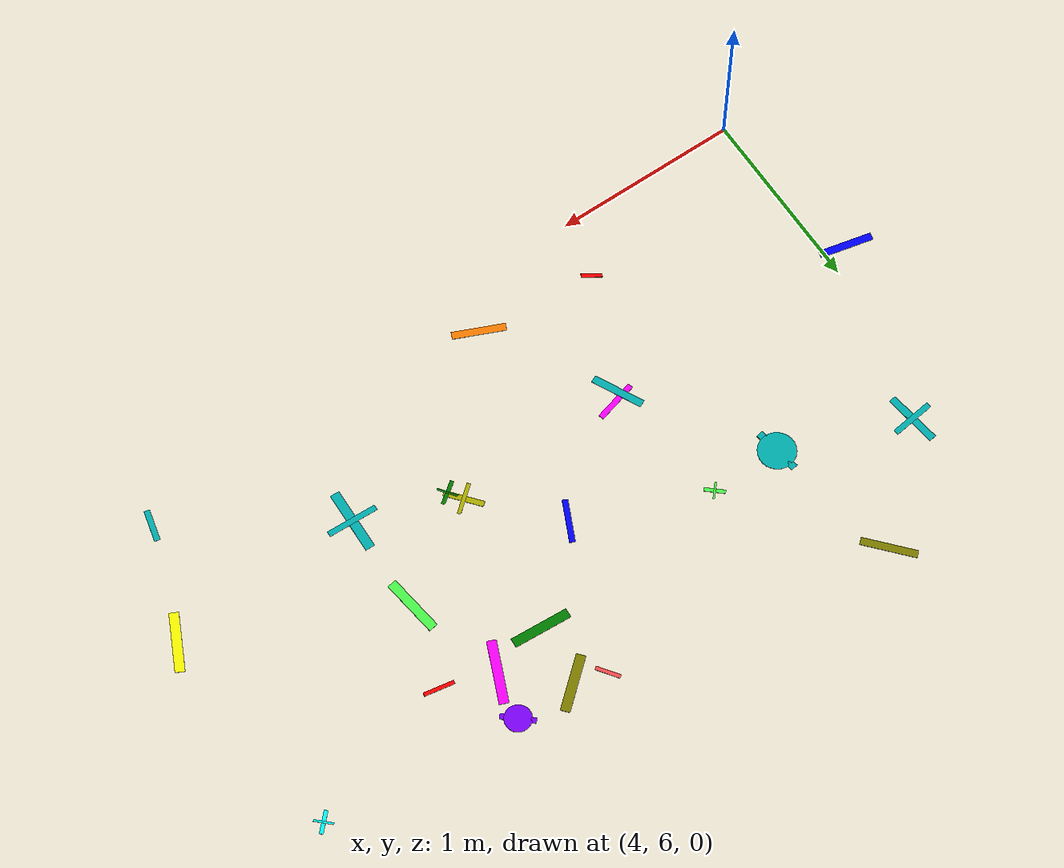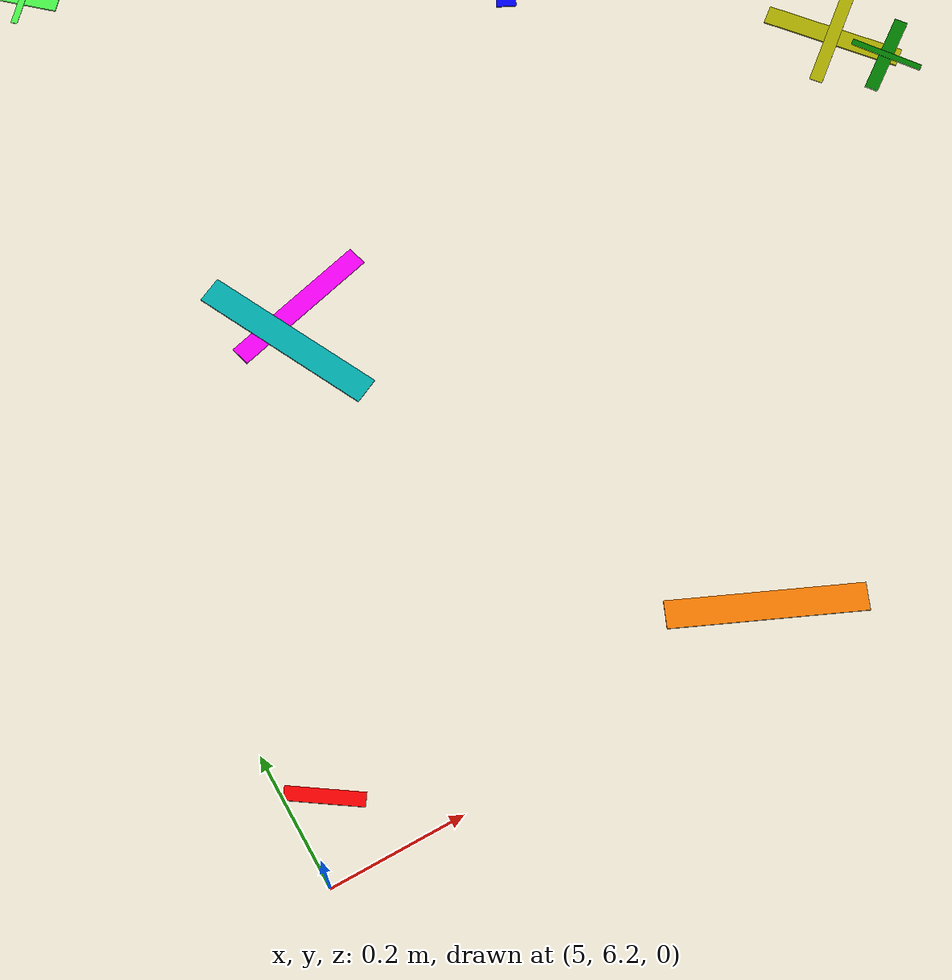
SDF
<sdf version="1.6">
 <world name="default">
  <model name="letter_X_1439">
   <static>true</static>
   <pose>3.88 6.90 0.012 0 0 6.064</pose>
   <link name="link">
    <visual name="visual">
     <geometry><box><size>0.29 0.04 0.002</size></box></geometry>
     <material>
      <ambient>0.0 0.0 1.0 1</ambient>
      <diffuse>0.0 0.0 1.0 1</diffuse>
      <specular>0.1 0.1 0.1 1</specular>
     </material>
    </visual>
   </link>
  </model>
  <model name="letter_E_1442">
   <static>true</static>
   <pose>4.18 7.87 0.012 0 0 1.702</pose>
   <link name="link">
    <visual name="visual">
     <geometry><box><size>0.29 0.04 0.002</size></box></geometry>
     <material>
      <ambient>0.0 0.7 0.7 1</ambient>
      <diffuse>0.0 0.7 0.7 1</diffuse>
      <specular>0.1 0.1 0.1 1</specular>
     </material>
    </visual>
    <visual name="visual2">
     <pose>0 0 0.001 0 0 1.57</pose>
     <geometry><box><size>0.23 0.03 0.001</size></box></geometry>
     <material><ambient>0.0 0.7 0.7 1</ambient><diffuse>0.0 0.7 0.7 1</diffuse></material>
    </visual>
   </link>
  </model>
  <model name="letter_K_1510">
   <static>true</static>
   <pose>5.05 6.31 0.007 0 0 5.694</pose>
   <link name="link">
    <visual name="visual">
     <geometry><box><size>0.11 0.02 0.002</size></box></geometry>
     <material>
      <ambient>1.0 0.0 0.0 1</ambient>
      <diffuse>1.0 0.0 0.0 1</diffuse>
      <specular>0.1 0.1 0.1 1</specular>
     </material>
    </visual>
   </link>
  </model>
  <model name="letter_S_1513">
   <static>true</static>
   <pose>5.31 6.92 0.010 0 0 5.171</pose>
   <link name="link">
    <visual name="visual">
     <geometry><box><size>0.28 0.04 0.002</size></box></geometry>
     <material>
      <ambient>0.0 0.7 0.7 1</ambient>
      <diffuse>0.0 0.7 0.7 1</diffuse>
      <specular>0.1 0.1 0.1 1</specular>
     </material>
    </visual>
   </link>
  </model>
  <model name="letter_Y_1514">
   <static>true</static>
   <pose>5.35 6.96 0.009 0 0 3.407</pose>
   <link name="link">
    <visual name="visual">
     <geometry><box><size>0.23 0.03 0.002</size></box></geometry>
     <material>
      <ambient>1.0 0.0 1.0 1</ambient>
      <diffuse>1.0 0.0 1.0 1</diffuse>
      <specular>0.1 0.1 0.1 1</specular>
     </material>
    </visual>
   </link>
  </model>
  <model name="letter_O_1515">
   <static>true</static>
   <pose>4.84 7.63 0.006 0 0 1.717</pose>
   <link name="link">
    <visual name="visual">
     <geometry><box><size>0.25 0.04 0.002</size></box></geometry>
     <material>
      <ambient>0.0 0.7 0.7 1</ambient>
      <diffuse>0.0 0.7 0.7 1</diffuse>
      <specular>0.1 0.1 0.1 1</specular>
     </material>
    </visual>
    <visual name="visual2">
     <geometry><cylinder><radius>0.10</radius><length>0.002</length></cylinder></geometry>
     <material><ambient>0.0 0.7 0.7 1</ambient><diffuse>0.0 0.7 0.7 1</diffuse></material>
    </visual>
   </link>
  </model>
  <model name="letter_P_1516">
   <static>true</static>
   <pose>4.69 8.36 0.008 0 0 5.438</pose>
   <link name="link">
    <visual name="visual">
     <geometry><box><size>0.29 0.04 0.002</size></box></geometry>
     <material>
      <ambient>0.5 0.5 0.0 1</ambient>
      <diffuse>0.5 0.5 0.0 1</diffuse>
      <specular>0.1 0.1 0.1 1</specular>
     </material>
    </visual>
   </link>
  </model>
  <model name="letter_L_1517">
   <static>true</static>
   <pose>5.22 7.63 0.003 0 0 2.415</pose>
   <link name="link">
    <visual name="visual">
     <geometry><box><size>0.11 0.02 0.002</size></box></geometry>
     <material>
      <ambient>0.3 1.0 0.3 1</ambient>
      <diffuse>0.3 1.0 0.3 1</diffuse>
      <specular>0.1 0.1 0.1 1</specular>
     </material>
    </visual>
    <visual name="visual2">
     <pose>0 0 0.001 0 0 1.57</pose>
     <geometry><box><size>0.09 0.01 0.001</size></box></geometry>
     <material><ambient>0.3 1.0 0.3 1</ambient><diffuse>0.3 1.0 0.3 1</diffuse></material>
    </visual>
   </link>
  </model>
  <model name="letter_Y_1585">
   <static>true</static>
   <pose>5.70 6.25 0.008 0 0 2.731</pose>
   <link name="link">
    <visual name="visual">
     <geometry><box><size>0.28 0.04 0.002</size></box></geometry>
     <material>
      <ambient>1.0 0.5 0.0 1</ambient>
      <diffuse>1.0 0.5 0.0 1</diffuse>
      <specular>0.1 0.1 0.1 1</specular>
     </material>
    </visual>
   </link>
  </model>
  <model name="letter_I_1588">
   <static>true</static>
   <pose>6.27 6.97 0.005 0 0 5.404</pose>
   <link name="link">
    <visual name="visual">
     <geometry><box><size>0.21 0.03 0.002</size></box></geometry>
     <material>
      <ambient>0.7 0.7 0.0 1</ambient>
      <diffuse>0.7 0.7 0.0 1</diffuse>
      <specular>0.1 0.1 0.1 1</specular>
     </material>
    </visual>
    <visual name="visual2">
     <pose>0 0 0.001 0 0 1.57</pose>
     <geometry><box><size>0.17 0.02 0.001</size></box></geometry>
     <material><ambient>0.7 0.7 0.0 1</ambient><diffuse>0.7 0.7 0.0 1</diffuse></material>
    </visual>
   </link>
  </model>
  <model name="letter_D_1589">
   <static>true</static>
   <pose>5.91 7.36 0.007 0 0 1.134</pose>
   <link name="link">
    <visual name="visual">
     <geometry><box><size>0.23 0.03 0.002</size></box></geometry>
     <material>
      <ambient>0.0 0.0 1.0 1</ambient>
      <diffuse>0.0 0.0 1.0 1</diffuse>
      <specular>0.1 0.1 0.1 1</specular>
     </material>
    </visual>
   </link>
  </model>
  <model name="letter_A_1590">
   <static>true</static>
   <pose>6.32 6.90 0.011 0 0 0.634</pose>
   <link name="link">
    <visual name="visual">
     <geometry><box><size>0.13 0.02 0.002</size></box></geometry>
     <material>
      <ambient>0.0 0.5 0.0 1</ambient>
      <diffuse>0.0 0.5 0.0 1</diffuse>
      <specular>0.1 0.1 0.1 1</specular>
     </material>
    </visual>
    <visual name="visual2">
     <pose>0 0 0.001 0 0 1.57</pose>
     <geometry><box><size>0.11 0.01 0.001</size></box></geometry>
     <material><ambient>0.0 0.5 0.0 1</ambient><diffuse>0.0 0.5 0.0 1</diffuse></material>
    </visual>
   </link>
  </model>
  <model name="letter_Z_1591">
   <static>true</static>
   <pose>6.37 8.07 0.010 0 0 3.850</pose>
   <link name="link">
    <visual name="visual">
     <geometry><box><size>0.30 0.05 0.002</size></box></geometry>
     <material>
      <ambient>0.5 0.5 0.0 1</ambient>
      <diffuse>0.5 0.5 0.0 1</diffuse>
      <specular>0.1 0.1 0.1 1</specular>
     </material>
    </visual>
   </link>
  </model>
  <model name="letter_V_1592">
   <static>true</static>
   <pose>6.20 8.12 0.012 0 0 2.192</pose>
   <link name="link">
    <visual name="visual">
     <geometry><box><size>0.13 0.02 0.002</size></box></geometry>
     <material>
      <ambient>1.0 0.3 0.3 1</ambient>
      <diffuse>1.0 0.3 0.3 1</diffuse>
      <specular>0.1 0.1 0.1 1</specular>
     </material>
    </visual>
   </link>
  </model>
  <model name="letter_U_1593">
   <static>true</static>
   <pose>6.34 7.75 0.011 0 0 3.080</pose>
   <link name="link">
    <visual name="visual">
     <geometry><box><size>0.31 0.05 0.002</size></box></geometry>
     <material>
      <ambient>0.0 0.5 0.0 1</ambient>
      <diffuse>0.0 0.5 0.0 1</diffuse>
      <specular>0.1 0.1 0.1 1</specular>
     </material>
    </visual>
   </link>
  </model>
  <model name="letter_A_1664">
   <static>true</static>
   <pose>6.79 6.76 0.003 0 0 4.681</pose>
   <link name="link">
    <visual name="visual">
     <geometry><box><size>0.34 0.05 0.002</size></box></geometry>
     <material>
      <ambient>0.0 0.7 0.7 1</ambient>
      <diffuse>0.0 0.7 0.7 1</diffuse>
      <specular>0.1 0.1 0.1 1</specular>
     </material>
    </visual>
    <visual name="visual2">
     <pose>0 0 0.001 0 0 1.57</pose>
     <geometry><box><size>0.27 0.03 0.001</size></box></geometry>
     <material><ambient>0.0 0.7 0.7 1</ambient><diffuse>0.0 0.7 0.7 1</diffuse></material>
    </visual>
   </link>
  </model>
  <model name="letter_D_1665">
   <static>true</static>
   <pose>6.79 7.30 0.004 0 0 1.707</pose>
   <link name="link">
    <visual name="visual">
     <geometry><box><size>0.31 0.05 0.002</size></box></geometry>
     <material>
      <ambient>0.3 1.0 0.3 1</ambient>
      <diffuse>0.3 1.0 0.3 1</diffuse>
      <specular>0.1 0.1 0.1 1</specular>
     </material>
    </visual>
   </link>
  </model>
  <model name="letter_X_1666">
   <static>true</static>
   <pose>6.92 7.73 0.010 0 0 2.965</pose>
   <link name="link">
    <visual name="visual">
     <geometry><box><size>0.16 0.02 0.002</size></box></geometry>
     <material>
      <ambient>1.0 0.0 0.0 1</ambient>
      <diffuse>1.0 0.0 0.0 1</diffuse>
      <specular>0.1 0.1 0.1 1</specular>
     </material>
    </visual>
   </link>
  </model>
  <model name="letter_C_1667">
   <static>true</static>
   <pose>6.69 8.07 0.008 0 0 5.561</pose>
   <link name="link">
    <visual name="visual">
     <geometry><box><size>0.18 0.03 0.002</size></box></geometry>
     <material>
      <ambient>0.5 0.0 1.0 1</ambient>
      <diffuse>0.5 0.0 1.0 1</diffuse>
      <specular>0.1 0.1 0.1 1</specular>
     </material>
    </visual>
    <visual name="visual2">
     <geometry><cylinder><radius>0.07</radius><length>0.002</length></cylinder></geometry>
     <material><ambient>0.5 0.0 1.0 1</ambient><diffuse>0.5 0.0 1.0 1</diffuse></material>
    </visual>
   </link>
  </model>
  <model name="letter_Z_1668">
   <static>true</static>
   <pose>6.64 7.82 0.012 0 0 1.168</pose>
   <link name="link">
    <visual name="visual">
     <geometry><box><size>0.33 0.05 0.002</size></box></geometry>
     <material>
      <ambient>1.0 0.0 1.0 1</ambient>
      <diffuse>1.0 0.0 1.0 1</diffuse>
      <specular>0.1 0.1 0.1 1</specular>
     </material>
    </visual>
   </link>
  </model>
  <model name="letter_Y_1742">
   <static>true</static>
   <pose>7.62 6.23 0.010 0 0 4.481</pose>
   <link name="link">
    <visual name="visual">
     <geometry><box><size>0.17 0.03 0.002</size></box></geometry>
     <material>
      <ambient>0.0 0.7 0.7 1</ambient>
      <diffuse>0.0 0.7 0.7 1</diffuse>
      <specular>0.1 0.1 0.1 1</specular>
     </material>
    </visual>
   </link>
  </model>
  <model name="letter_P_1747">
   <static>true</static>
   <pose>7.84 6.82 0.012 0 0 1.118</pose>
   <link name="link">
    <visual name="visual">
     <geometry><box><size>0.31 0.05 0.002</size></box></geometry>
     <material>
      <ambient>1.0 1.0 0.0 1</ambient>
      <diffuse>1.0 1.0 0.0 1</diffuse>
      <specular>0.1 0.1 0.1 1</specular>
     </material>
    </visual>
   </link>
  </model>
  <model name="letter_T_1748">
   <static>true</static>
   <pose>7.74 7.98 0.004 0 0 0.806</pose>
   <link name="link">
    <visual name="visual">
     <geometry><box><size>0.12 0.02 0.002</size></box></geometry>
     <material>
      <ambient>0.0 1.0 1.0 1</ambient>
      <diffuse>0.0 1.0 1.0 1</diffuse>
      <specular>0.1 0.1 0.1 1</specular>
     </material>
    </visual>
    <visual name="visual2">
     <pose>0 0 0.001 0 0 1.57</pose>
     <geometry><box><size>0.10 0.01 0.001</size></box></geometry>
     <material><ambient>0.0 1.0 1.0 1</ambient><diffuse>0.0 1.0 1.0 1</diffuse></material>
    </visual>
   </link>
  </model>
 </world>
</sdf>
